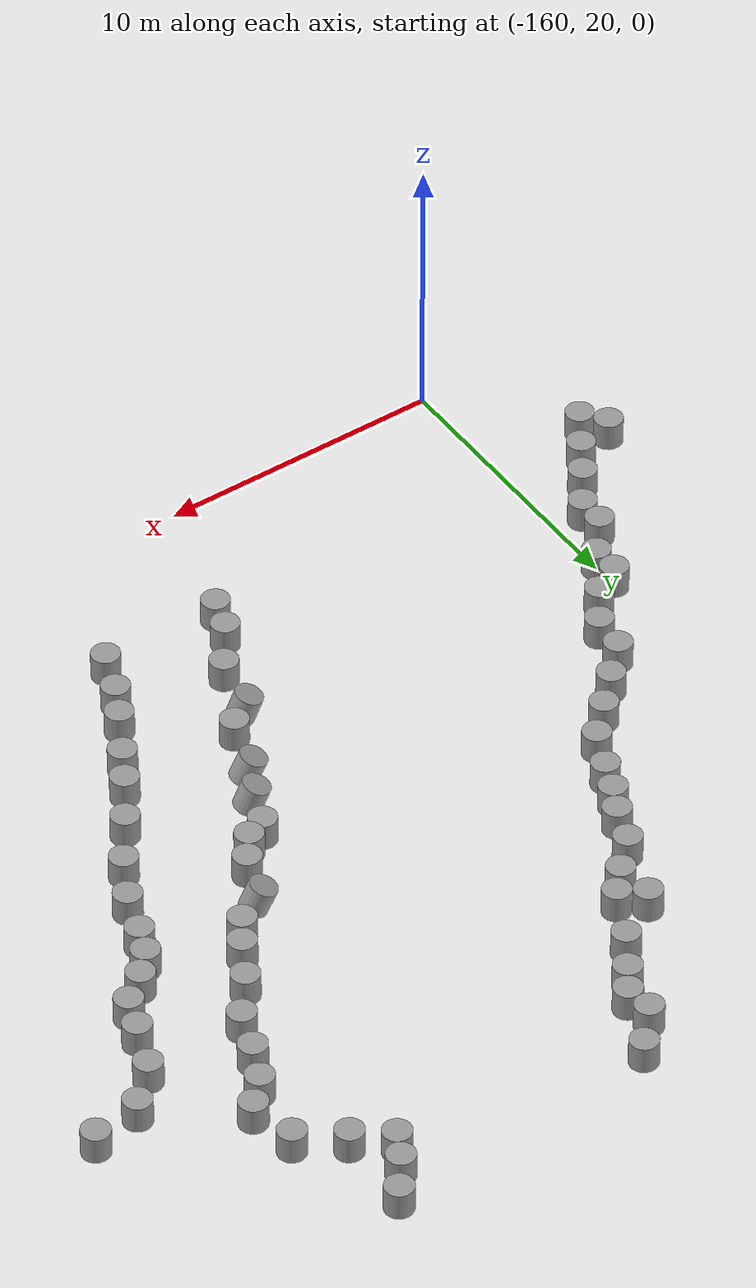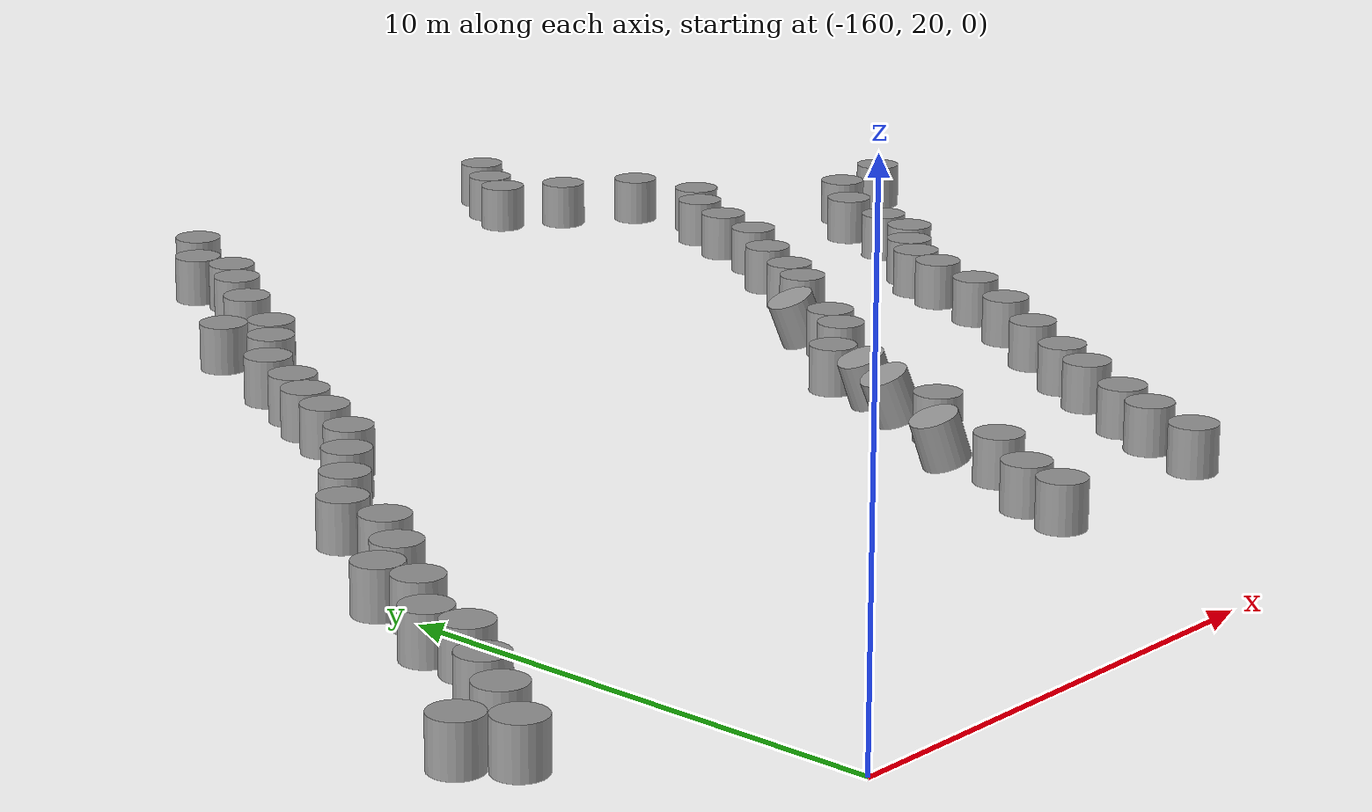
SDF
<sdf version="1.7">
 <world name="default">
  <model name="unit_cylinder_85_clone_244_clone_1">
   <pose>-132.027 42.5679 0.449997 1e-06 2e-06 0.000238</pose>
   <link name="link">
    <inertial>
     <mass>1</mass>
     <inertia><ixx>0.145833</ixx><ixy>0</ixy><ixz>0</ixz><iyy>0.145833</iyy><iyz>0</iyz><izz>0.125</izz></inertia>
    </inertial>
    <collision name="collision">
     <geometry><cylinder><radius>0.5</radius><length>1</length></cylinder></geometry>
    </collision>
    <visual name="visual">
     <geometry><cylinder><radius>0.5</radius><length>1</length></cylinder></geometry>
     <material>
      <script><name>Gazebo/Grey</name><uri>file://media/materials/scripts/gazebo.material</uri></script>
     </material>
    </visual>
   </link>
  </model>
  <model name="unit_cylinder_85_clone_244_clone_15">
   <pose>-138.379 49.8121 0.449995 -2e-06 -2e-06 0.000221</pose>
   <link name="link">
    <inertial>
     <mass>1</mass>
     <inertia><ixx>0.145833</ixx><ixy>0</ixy><ixz>0</ixz><iyy>0.145833</iyy><iyz>0</iyz><izz>0.125</izz></inertia>
    </inertial>
    <collision name="collision">
     <geometry><cylinder><radius>0.5</radius><length>1</length></cylinder></geometry>
    </collision>
    <visual name="visual">
     <geometry><cylinder><radius>0.5</radius><length>1</length></cylinder></geometry>
     <material>
      <script><name>Gazebo/Grey</name><uri>file://media/materials/scripts/gazebo.material</uri></script>
     </material>
    </visual>
   </link>
  </model>
  <model name="unit_cylinder_85_clone_244_clone_16">
   <pose>-139.179 48.7502 0.45 0 -0 0.000527</pose>
   <link name="link">
    <inertial>
     <mass>1</mass>
     <inertia><ixx>0.145833</ixx><ixy>0</ixy><ixz>0</ixz><iyy>0.145833</iyy><iyz>0</iyz><izz>0.125</izz></inertia>
    </inertial>
    <collision name="collision">
     <geometry><cylinder><radius>0.5</radius><length>1</length></cylinder></geometry>
    </collision>
    <visual name="visual">
     <geometry><cylinder><radius>0.5</radius><length>1</length></cylinder></geometry>
     <material>
      <script><name>Gazebo/Grey</name><uri>file://media/materials/scripts/gazebo.material</uri></script>
     </material>
    </visual>
   </link>
  </model>
  <model name="unit_cylinder_85_clone_244_clone_17">
   <pose>-139.647 47.8663 0.44999 0 -0 0.000439</pose>
   <link name="link">
    <inertial>
     <mass>1</mass>
     <inertia><ixx>0.145833</ixx><ixy>0</ixy><ixz>0</ixz><iyy>0.145833</iyy><iyz>0</iyz><izz>0.125</izz></inertia>
    </inertial>
    <collision name="collision">
     <geometry><cylinder><radius>0.5</radius><length>1</length></cylinder></geometry>
    </collision>
    <visual name="visual">
     <geometry><cylinder><radius>0.5</radius><length>1</length></cylinder></geometry>
     <material>
      <script><name>Gazebo/Grey</name><uri>file://media/materials/scripts/gazebo.material</uri></script>
     </material>
    </visual>
   </link>
  </model>
  <model name="unit_cylinder_85_clone_244_clone_18">
   <pose>-138.464 47.0001 0.449999 7e-06 -2e-06 0.000307</pose>
   <link name="link">
    <inertial>
     <mass>1</mass>
     <inertia><ixx>0.145833</ixx><ixy>0</ixy><ixz>0</ixz><iyy>0.145833</iyy><iyz>0</iyz><izz>0.125</izz></inertia>
    </inertial>
    <collision name="collision">
     <geometry><cylinder><radius>0.5</radius><length>1</length></cylinder></geometry>
    </collision>
    <visual name="visual">
     <geometry><cylinder><radius>0.5</radius><length>1</length></cylinder></geometry>
     <material>
      <script><name>Gazebo/Grey</name><uri>file://media/materials/scripts/gazebo.material</uri></script>
     </material>
    </visual>
   </link>
  </model>
  <model name="unit_cylinder_85_clone_244_clone_19">
   <pose>-137 46 0.449998 -4e-06 -1e-06 0.000349</pose>
   <link name="link">
    <inertial>
     <mass>1</mass>
     <inertia><ixx>0.145833</ixx><ixy>0</ixy><ixz>0</ixz><iyy>0.145833</iyy><iyz>0</iyz><izz>0.125</izz></inertia>
    </inertial>
    <collision name="collision">
     <geometry><cylinder><radius>0.5</radius><length>1</length></cylinder></geometry>
    </collision>
    <visual name="visual">
     <geometry><cylinder><radius>0.5</radius><length>1</length></cylinder></geometry>
     <material>
      <script><name>Gazebo/Grey</name><uri>file://media/materials/scripts/gazebo.material</uri></script>
     </material>
    </visual>
   </link>
  </model>
  <model name="unit_cylinder_85_clone_244_clone_20">
   <pose>-136.708 44.3129 0.449997 5e-06 1e-06 0.000349</pose>
   <link name="link">
    <inertial>
     <mass>1</mass>
     <inertia><ixx>0.145833</ixx><ixy>0</ixy><ixz>0</ixz><iyy>0.145833</iyy><iyz>0</iyz><izz>0.125</izz></inertia>
    </inertial>
    <collision name="collision">
     <geometry><cylinder><radius>0.5</radius><length>1</length></cylinder></geometry>
    </collision>
    <visual name="visual">
     <geometry><cylinder><radius>0.5</radius><length>1</length></cylinder></geometry>
     <material>
      <script><name>Gazebo/Grey</name><uri>file://media/materials/scripts/gazebo.material</uri></script>
     </material>
    </visual>
   </link>
  </model>
  <model name="unit_cylinder_85_clone_244_clone_21">
   <pose>-137.504 43.4883 0.449997 -4e-06 -0 0.000353</pose>
   <link name="link">
    <inertial>
     <mass>1</mass>
     <inertia><ixx>0.145833</ixx><ixy>0</ixy><ixz>0</ixz><iyy>0.145833</iyy><iyz>0</iyz><izz>0.125</izz></inertia>
    </inertial>
    <collision name="collision">
     <geometry><cylinder><radius>0.5</radius><length>1</length></cylinder></geometry>
    </collision>
    <visual name="visual">
     <geometry><cylinder><radius>0.5</radius><length>1</length></cylinder></geometry>
     <material>
      <script><name>Gazebo/Grey</name><uri>file://media/materials/scripts/gazebo.material</uri></script>
     </material>
    </visual>
   </link>
  </model>
  <model name="unit_cylinder_85_clone_244_clone_22">
   <pose>-138.077 42.2571 0.449999 4e-06 1e-06 0.000352</pose>
   <link name="link">
    <inertial>
     <mass>1</mass>
     <inertia><ixx>0.145833</ixx><ixy>0</ixy><ixz>0</ixz><iyy>0.145833</iyy><iyz>0</iyz><izz>0.125</izz></inertia>
    </inertial>
    <collision name="collision">
     <geometry><cylinder><radius>0.5</radius><length>1</length></cylinder></geometry>
    </collision>
    <visual name="visual">
     <geometry><cylinder><radius>0.5</radius><length>1</length></cylinder></geometry>
     <material>
      <script><name>Gazebo/Grey</name><uri>file://media/materials/scripts/gazebo.material</uri></script>
     </material>
    </visual>
   </link>
  </model>
  <model name="unit_cylinder_85_clone_244_clone_23">
   <pose>-138.586 40.8934 0.449998 -3e-06 -4e-06 0.000357</pose>
   <link name="link">
    <inertial>
     <mass>1</mass>
     <inertia><ixx>0.145833</ixx><ixy>0</ixy><ixz>0</ixz><iyy>0.145833</iyy><iyz>0</iyz><izz>0.125</izz></inertia>
    </inertial>
    <collision name="collision">
     <geometry><cylinder><radius>0.5</radius><length>1</length></cylinder></geometry>
    </collision>
    <visual name="visual">
     <geometry><cylinder><radius>0.5</radius><length>1</length></cylinder></geometry>
     <material>
      <script><name>Gazebo/Grey</name><uri>file://media/materials/scripts/gazebo.material</uri></script>
     </material>
    </visual>
   </link>
  </model>
  <model name="unit_cylinder_85_clone_244_clone_24">
   <pose>-139.599 39.5977 0.449997 3e-06 -3e-06 0.00036</pose>
   <link name="link">
    <inertial>
     <mass>1</mass>
     <inertia><ixx>0.145833</ixx><ixy>0</ixy><ixz>0</ixz><iyy>0.145833</iyy><iyz>0</iyz><izz>0.125</izz></inertia>
    </inertial>
    <collision name="collision">
     <geometry><cylinder><radius>0.5</radius><length>1</length></cylinder></geometry>
    </collision>
    <visual name="visual">
     <geometry><cylinder><radius>0.5</radius><length>1</length></cylinder></geometry>
     <material>
      <script><name>Gazebo/Grey</name><uri>file://media/materials/scripts/gazebo.material</uri></script>
     </material>
    </visual>
   </link>
  </model>
  <model name="unit_cylinder_85_clone_244_clone_25">
   <pose>-140.924 37.4535 0.449991 -0 -1e-06 0.000351</pose>
   <link name="link">
    <inertial>
     <mass>1</mass>
     <inertia><ixx>0.145833</ixx><ixy>0</ixy><ixz>0</ixz><iyy>0.145833</iyy><iyz>0</iyz><izz>0.125</izz></inertia>
    </inertial>
    <collision name="collision">
     <geometry><cylinder><radius>0.5</radius><length>1</length></cylinder></geometry>
    </collision>
    <visual name="visual">
     <geometry><cylinder><radius>0.5</radius><length>1</length></cylinder></geometry>
     <material>
      <script><name>Gazebo/Grey</name><uri>file://media/materials/scripts/gazebo.material</uri></script>
     </material>
    </visual>
   </link>
  </model>
  <model name="unit_cylinder_85_clone_244_clone_26">
   <pose>-140.349 38.3116 0.45 1e-06 -0 0.000457</pose>
   <link name="link">
    <inertial>
     <mass>1</mass>
     <inertia><ixx>0.145833</ixx><ixy>0</ixy><ixz>0</ixz><iyy>0.145833</iyy><iyz>0</iyz><izz>0.125</izz></inertia>
    </inertial>
    <collision name="collision">
     <geometry><cylinder><radius>0.5</radius><length>1</length></cylinder></geometry>
    </collision>
    <visual name="visual">
     <geometry><cylinder><radius>0.5</radius><length>1</length></cylinder></geometry>
     <material>
      <script><name>Gazebo/Grey</name><uri>file://media/materials/scripts/gazebo.material</uri></script>
     </material>
    </visual>
   </link>
  </model>
  <model name="unit_cylinder_85_clone_244_clone_27">
   <pose>-133.81 42.201 0.45 0 -0 0.000631</pose>
   <link name="link">
    <inertial>
     <mass>1</mass>
     <inertia><ixx>0.145833</ixx><ixy>0</ixy><ixz>0</ixz><iyy>0.145833</iyy><iyz>0</iyz><izz>0.125</izz></inertia>
    </inertial>
    <collision name="collision">
     <geometry><cylinder><radius>0.5</radius><length>1</length></cylinder></geometry>
    </collision>
    <visual name="visual">
     <geometry><cylinder><radius>0.5</radius><length>1</length></cylinder></geometry>
     <material>
      <script><name>Gazebo/Grey</name><uri>file://media/materials/scripts/gazebo.material</uri></script>
     </material>
    </visual>
   </link>
  </model>
  <model name="unit_cylinder_85_clone_244_clone_28">
   <pose>-134.991 41.0279 0.450001 1e-06 -0 0.000565</pose>
   <link name="link">
    <inertial>
     <mass>1</mass>
     <inertia><ixx>0.145833</ixx><ixy>0</ixy><ixz>0</ixz><iyy>0.145833</iyy><iyz>0</iyz><izz>0.125</izz></inertia>
    </inertial>
    <collision name="collision">
     <geometry><cylinder><radius>0.5</radius><length>1</length></cylinder></geometry>
    </collision>
    <visual name="visual">
     <geometry><cylinder><radius>0.5</radius><length>1</length></cylinder></geometry>
     <material>
      <script><name>Gazebo/Grey</name><uri>file://media/materials/scripts/gazebo.material</uri></script>
     </material>
    </visual>
   </link>
  </model>
  <model name="unit_cylinder_85_clone_244_clone_29">
   <pose>-135.608 39.4819 0.450004 -4e-06 -6e-06 0.000615</pose>
   <link name="link">
    <inertial>
     <mass>1</mass>
     <inertia><ixx>0.145833</ixx><ixy>0</ixy><ixz>0</ixz><iyy>0.145833</iyy><iyz>0</iyz><izz>0.125</izz></inertia>
    </inertial>
    <collision name="collision">
     <geometry><cylinder><radius>0.5</radius><length>1</length></cylinder></geometry>
    </collision>
    <visual name="visual">
     <geometry><cylinder><radius>0.5</radius><length>1</length></cylinder></geometry>
     <material>
      <script><name>Gazebo/Grey</name><uri>file://media/materials/scripts/gazebo.material</uri></script>
     </material>
    </visual>
   </link>
  </model>
  <model name="unit_cylinder_85_clone_244_clone_30">
   <pose>-136 38.4043 0.449997 4e-06 4e-06 0.001042</pose>
   <link name="link">
    <inertial>
     <mass>1</mass>
     <inertia><ixx>0.145833</ixx><ixy>0</ixy><ixz>0</ixz><iyy>0.145833</iyy><iyz>0</iyz><izz>0.125</izz></inertia>
    </inertial>
    <collision name="collision">
     <geometry><cylinder><radius>0.5</radius><length>1</length></cylinder></geometry>
    </collision>
    <visual name="visual">
     <geometry><cylinder><radius>0.5</radius><length>1</length></cylinder></geometry>
     <material>
      <script><name>Gazebo/Grey</name><uri>file://media/materials/scripts/gazebo.material</uri></script>
     </material>
    </visual>
   </link>
  </model>
  <model name="unit_cylinder_85_clone_244_clone_31">
   <pose>-137.615 36.9221 0.45 -4e-06 -0 0.000912</pose>
   <link name="link">
    <inertial>
     <mass>1</mass>
     <inertia><ixx>0.145833</ixx><ixy>0</ixy><ixz>0</ixz><iyy>0.145833</iyy><iyz>0</iyz><izz>0.125</izz></inertia>
    </inertial>
    <collision name="collision">
     <geometry><cylinder><radius>0.5</radius><length>1</length></cylinder></geometry>
    </collision>
    <visual name="visual">
     <geometry><cylinder><radius>0.5</radius><length>1</length></cylinder></geometry>
     <material>
      <script><name>Gazebo/Grey</name><uri>file://media/materials/scripts/gazebo.material</uri></script>
     </material>
    </visual>
   </link>
  </model>
  <model name="unit_cylinder_85_clone_244_clone_32">
   <pose>-136.937 37.6573 0.450001 2e-06 1e-06 0.001035</pose>
   <link name="link">
    <inertial>
     <mass>1</mass>
     <inertia><ixx>0.145833</ixx><ixy>0</ixy><ixz>0</ixz><iyy>0.145833</iyy><iyz>0</iyz><izz>0.125</izz></inertia>
    </inertial>
    <collision name="collision">
     <geometry><cylinder><radius>0.5</radius><length>1</length></cylinder></geometry>
    </collision>
    <visual name="visual">
     <geometry><cylinder><radius>0.5</radius><length>1</length></cylinder></geometry>
     <material>
      <script><name>Gazebo/Grey</name><uri>file://media/materials/scripts/gazebo.material</uri></script>
     </material>
    </visual>
   </link>
  </model>
  <model name="unit_cylinder_85_clone_244_clone_33">
   <pose>-138 35.9991 0.449992 -2e-06 3e-06 -0.000116</pose>
   <link name="link">
    <inertial>
     <mass>1</mass>
     <inertia><ixx>0.145833</ixx><ixy>0</ixy><ixz>0</ixz><iyy>0.145833</iyy><iyz>0</iyz><izz>0.125</izz></inertia>
    </inertial>
    <collision name="collision">
     <geometry><cylinder><radius>0.5</radius><length>1</length></cylinder></geometry>
    </collision>
    <visual name="visual">
     <geometry><cylinder><radius>0.5</radius><length>1</length></cylinder></geometry>
     <material>
      <script><name>Gazebo/Grey</name><uri>file://media/materials/scripts/gazebo.material</uri></script>
     </material>
    </visual>
   </link>
  </model>
  <model name="unit_cylinder_85_clone_244_clone_34">
   <pose>-142.145 36.5656 0.394004 -0.189425 -0.307665 0.022353</pose>
   <link name="link">
    <inertial>
     <mass>1</mass>
     <inertia><ixx>0.145833</ixx><ixy>0</ixy><ixz>0</ixz><iyy>0.145833</iyy><iyz>0</iyz><izz>0.125</izz></inertia>
    </inertial>
    <collision name="collision">
     <geometry><cylinder><radius>0.5</radius><length>1</length></cylinder></geometry>
    </collision>
    <visual name="visual">
     <geometry><cylinder><radius>0.5</radius><length>1</length></cylinder></geometry>
     <material>
      <script><name>Gazebo/Grey</name><uri>file://media/materials/scripts/gazebo.material</uri></script>
     </material>
    </visual>
   </link>
  </model>
  <model name="unit_cylinder_85_clone_244_clone_35">
   <pose>-142.588 35.2788 0.450005 -9e-06 2e-06 0.014087</pose>
   <link name="link">
    <inertial>
     <mass>1</mass>
     <inertia><ixx>0.145833</ixx><ixy>0</ixy><ixz>0</ixz><iyy>0.145833</iyy><iyz>0</iyz><izz>0.125</izz></inertia>
    </inertial>
    <collision name="collision">
     <geometry><cylinder><radius>0.5</radius><length>1</length></cylinder></geometry>
    </collision>
    <visual name="visual">
     <geometry><cylinder><radius>0.5</radius><length>1</length></cylinder></geometry>
     <material>
      <script><name>Gazebo/Grey</name><uri>file://media/materials/scripts/gazebo.material</uri></script>
     </material>
    </visual>
   </link>
  </model>
  <model name="unit_cylinder_85_clone_244_clone_36">
   <pose>-143.199 34.4869 0.450047 -2.7e-05 -0.000169 -0.098283</pose>
   <link name="link">
    <inertial>
     <mass>1</mass>
     <inertia><ixx>0.145833</ixx><ixy>0</ixy><ixz>0</ixz><iyy>0.145833</iyy><iyz>0</iyz><izz>0.125</izz></inertia>
    </inertial>
    <collision name="collision">
     <geometry><cylinder><radius>0.5</radius><length>1</length></cylinder></geometry>
    </collision>
    <visual name="visual">
     <geometry><cylinder><radius>0.5</radius><length>1</length></cylinder></geometry>
     <material>
      <script><name>Gazebo/Grey</name><uri>file://media/materials/scripts/gazebo.material</uri></script>
     </material>
    </visual>
   </link>
  </model>
  <model name="unit_cylinder_85_clone_244_clone_37">
   <pose>-144.058 33.9749 0.25005 6.8e-05 -9e-05 -0.014778</pose>
   <link name="link">
    <inertial>
     <mass>1</mass>
     <inertia><ixx>0.145833</ixx><ixy>0</ixy><ixz>0</ixz><iyy>0.145833</iyy><iyz>0</iyz><izz>0.125</izz></inertia>
    </inertial>
    <collision name="collision">
     <geometry><cylinder><radius>0.5</radius><length>1</length></cylinder></geometry>
    </collision>
    <visual name="visual">
     <geometry><cylinder><radius>0.5</radius><length>1</length></cylinder></geometry>
     <material>
      <script><name>Gazebo/Grey</name><uri>file://media/materials/scripts/gazebo.material</uri></script>
     </material>
    </visual>
   </link>
  </model>
  <model name="unit_cylinder_85_clone_244_clone_38">
   <pose>-144.544 32.6563 0.383883 -0.175836 -0.276326 0.035204</pose>
   <link name="link">
    <inertial>
     <mass>1</mass>
     <inertia><ixx>0.145833</ixx><ixy>0</ixy><ixz>0</ixz><iyy>0.145833</iyy><iyz>0</iyz><izz>0.125</izz></inertia>
    </inertial>
    <collision name="collision">
     <geometry><cylinder><radius>0.5</radius><length>1</length></cylinder></geometry>
    </collision>
    <visual name="visual">
     <geometry><cylinder><radius>0.5</radius><length>1</length></cylinder></geometry>
     <material>
      <script><name>Gazebo/Grey</name><uri>file://media/materials/scripts/gazebo.material</uri></script>
     </material>
    </visual>
   </link>
  </model>
  <model name="unit_cylinder_85_clone_244_clone_39">
   <pose>-145.173 31.5243 0.396245 -0.193736 -0.314254 0.023507</pose>
   <link name="link">
    <inertial>
     <mass>1</mass>
     <inertia><ixx>0.145833</ixx><ixy>0</ixy><ixz>0</ixz><iyy>0.145833</iyy><iyz>0</iyz><izz>0.125</izz></inertia>
    </inertial>
    <collision name="collision">
     <geometry><cylinder><radius>0.5</radius><length>1</length></cylinder></geometry>
    </collision>
    <visual name="visual">
     <geometry><cylinder><radius>0.5</radius><length>1</length></cylinder></geometry>
     <material>
      <script><name>Gazebo/Grey</name><uri>file://media/materials/scripts/gazebo.material</uri></script>
     </material>
    </visual>
   </link>
  </model>
  <model name="unit_cylinder_85_clone_244_clone_40">
   <pose>-145.726 29.8997 0.449998 -4e-06 -0 0.000353</pose>
   <link name="link">
    <inertial>
     <mass>1</mass>
     <inertia><ixx>0.145833</ixx><ixy>0</ixy><ixz>0</ixz><iyy>0.145833</iyy><iyz>0</iyz><izz>0.125</izz></inertia>
    </inertial>
    <collision name="collision">
     <geometry><cylinder><radius>0.5</radius><length>1</length></cylinder></geometry>
    </collision>
    <visual name="visual">
     <geometry><cylinder><radius>0.5</radius><length>1</length></cylinder></geometry>
     <material>
      <script><name>Gazebo/Grey</name><uri>file://media/materials/scripts/gazebo.material</uri></script>
     </material>
    </visual>
   </link>
  </model>
  <model name="unit_cylinder_85_clone_244_clone_41">
   <pose>-146.677 29.0813 0.380121 -0.161587 -0.270913 0.020364</pose>
   <link name="link">
    <inertial>
     <mass>1</mass>
     <inertia><ixx>0.145833</ixx><ixy>0</ixy><ixz>0</ixz><iyy>0.145833</iyy><iyz>0</iyz><izz>0.125</izz></inertia>
    </inertial>
    <collision name="collision">
     <geometry><cylinder><radius>0.5</radius><length>1</length></cylinder></geometry>
    </collision>
    <visual name="visual">
     <geometry><cylinder><radius>0.5</radius><length>1</length></cylinder></geometry>
     <material>
      <script><name>Gazebo/Grey</name><uri>file://media/materials/scripts/gazebo.material</uri></script>
     </material>
    </visual>
   </link>
  </model>
  <model name="unit_cylinder_85_clone_244_clone_42">
   <pose>-147 27.4138 0.449997 2e-06 -6e-06 0.000364</pose>
   <link name="link">
    <inertial>
     <mass>1</mass>
     <inertia><ixx>0.145833</ixx><ixy>0</ixy><ixz>0</ixz><iyy>0.145833</iyy><iyz>0</iyz><izz>0.125</izz></inertia>
    </inertial>
    <collision name="collision">
     <geometry><cylinder><radius>0.5</radius><length>1</length></cylinder></geometry>
    </collision>
    <visual name="visual">
     <geometry><cylinder><radius>0.5</radius><length>1</length></cylinder></geometry>
     <material>
      <script><name>Gazebo/Grey</name><uri>file://media/materials/scripts/gazebo.material</uri></script>
     </material>
    </visual>
   </link>
  </model>
  <model name="unit_cylinder_85_clone_244_clone_43">
   <pose>-148 26 0.450005 -6e-06 -7e-06 0.000349</pose>
   <link name="link">
    <inertial>
     <mass>1</mass>
     <inertia><ixx>0.145833</ixx><ixy>0</ixy><ixz>0</ixz><iyy>0.145833</iyy><iyz>0</iyz><izz>0.125</izz></inertia>
    </inertial>
    <collision name="collision">
     <geometry><cylinder><radius>0.5</radius><length>1</length></cylinder></geometry>
    </collision>
    <visual name="visual">
     <geometry><cylinder><radius>0.5</radius><length>1</length></cylinder></geometry>
     <material>
      <script><name>Gazebo/Grey</name><uri>file://media/materials/scripts/gazebo.material</uri></script>
     </material>
    </visual>
   </link>
  </model>
  <model name="unit_cylinder_85_clone_244_clone_44">
   <pose>-148.352 24.9116 0.449998 -4e-06 -4e-06 0.000356</pose>
   <link name="link">
    <inertial>
     <mass>1</mass>
     <inertia><ixx>0.145833</ixx><ixy>0</ixy><ixz>0</ixz><iyy>0.145833</iyy><iyz>0</iyz><izz>0.125</izz></inertia>
    </inertial>
    <collision name="collision">
     <geometry><cylinder><radius>0.5</radius><length>1</length></cylinder></geometry>
    </collision>
    <visual name="visual">
     <geometry><cylinder><radius>0.5</radius><length>1</length></cylinder></geometry>
     <material>
      <script><name>Gazebo/Grey</name><uri>file://media/materials/scripts/gazebo.material</uri></script>
     </material>
    </visual>
   </link>
  </model>
  <model name="unit_cylinder_85_clone_244_clone_53">
   <pose>-138.536 34.528 0.45 0 -0 0.00056</pose>
   <link name="link">
    <inertial>
     <mass>1</mass>
     <inertia><ixx>0.145833</ixx><ixy>0</ixy><ixz>0</ixz><iyy>0.145833</iyy><iyz>0</iyz><izz>0.125</izz></inertia>
    </inertial>
    <collision name="collision">
     <geometry><cylinder><radius>0.5</radius><length>1</length></cylinder></geometry>
    </collision>
    <visual name="visual">
     <geometry><cylinder><radius>0.5</radius><length>1</length></cylinder></geometry>
     <material>
      <script><name>Gazebo/Grey</name><uri>file://media/materials/scripts/gazebo.material</uri></script>
     </material>
    </visual>
   </link>
  </model>
  <model name="unit_cylinder_85_clone_244_clone_54">
   <pose>-139.334 33.0959 0.44999 0 -0 0.000371</pose>
   <link name="link">
    <inertial>
     <mass>1</mass>
     <inertia><ixx>0.145833</ixx><ixy>0</ixy><ixz>0</ixz><iyy>0.145833</iyy><iyz>0</iyz><izz>0.125</izz></inertia>
    </inertial>
    <collision name="collision">
     <geometry><cylinder><radius>0.5</radius><length>1</length></cylinder></geometry>
    </collision>
    <visual name="visual">
     <geometry><cylinder><radius>0.5</radius><length>1</length></cylinder></geometry>
     <material>
      <script><name>Gazebo/Grey</name><uri>file://media/materials/scripts/gazebo.material</uri></script>
     </material>
    </visual>
   </link>
  </model>
  <model name="unit_cylinder_85_clone_244_clone_55">
   <pose>-140.405 31.5638 0.450002 -2e-06 -3e-06 0.000473</pose>
   <link name="link">
    <inertial>
     <mass>1</mass>
     <inertia><ixx>0.145833</ixx><ixy>0</ixy><ixz>0</ixz><iyy>0.145833</iyy><iyz>0</iyz><izz>0.125</izz></inertia>
    </inertial>
    <collision name="collision">
     <geometry><cylinder><radius>0.5</radius><length>1</length></cylinder></geometry>
    </collision>
    <visual name="visual">
     <geometry><cylinder><radius>0.5</radius><length>1</length></cylinder></geometry>
     <material>
      <script><name>Gazebo/Grey</name><uri>file://media/materials/scripts/gazebo.material</uri></script>
     </material>
    </visual>
   </link>
  </model>
  <model name="unit_cylinder_85_clone_244_clone_56">
   <pose>-141.367 30.0864 0.450002 -4e-06 2e-06 0.000257</pose>
   <link name="link">
    <inertial>
     <mass>1</mass>
     <inertia><ixx>0.145833</ixx><ixy>0</ixy><ixz>0</ixz><iyy>0.145833</iyy><iyz>0</iyz><izz>0.125</izz></inertia>
    </inertial>
    <collision name="collision">
     <geometry><cylinder><radius>0.5</radius><length>1</length></cylinder></geometry>
    </collision>
    <visual name="visual">
     <geometry><cylinder><radius>0.5</radius><length>1</length></cylinder></geometry>
     <material>
      <script><name>Gazebo/Grey</name><uri>file://media/materials/scripts/gazebo.material</uri></script>
     </material>
    </visual>
   </link>
  </model>
  <model name="unit_cylinder_85_clone_244_clone_57">
   <pose>-142 29 0.449999 -1e-06 -6e-06 0.000346</pose>
   <link name="link">
    <inertial>
     <mass>1</mass>
     <inertia><ixx>0.145833</ixx><ixy>0</ixy><ixz>0</ixz><iyy>0.145833</iyy><iyz>0</iyz><izz>0.125</izz></inertia>
    </inertial>
    <collision name="collision">
     <geometry><cylinder><radius>0.5</radius><length>1</length></cylinder></geometry>
    </collision>
    <visual name="visual">
     <geometry><cylinder><radius>0.5</radius><length>1</length></cylinder></geometry>
     <material>
      <script><name>Gazebo/Grey</name><uri>file://media/materials/scripts/gazebo.material</uri></script>
     </material>
    </visual>
   </link>
  </model>
  <model name="unit_cylinder_85_clone_244_clone_58">
   <pose>-142.88 27.4863 0.45 0 -0 0.000436</pose>
   <link name="link">
    <inertial>
     <mass>1</mass>
     <inertia><ixx>0.145833</ixx><ixy>0</ixy><ixz>0</ixz><iyy>0.145833</iyy><iyz>0</iyz><izz>0.125</izz></inertia>
    </inertial>
    <collision name="collision">
     <geometry><cylinder><radius>0.5</radius><length>1</length></cylinder></geometry>
    </collision>
    <visual name="visual">
     <geometry><cylinder><radius>0.5</radius><length>1</length></cylinder></geometry>
     <material>
      <script><name>Gazebo/Grey</name><uri>file://media/materials/scripts/gazebo.material</uri></script>
     </material>
    </visual>
   </link>
  </model>
  <model name="unit_cylinder_85_clone_244_clone_59">
   <pose>-143.442 26.4251 0.449991 1e-06 1e-06 0.000568</pose>
   <link name="link">
    <inertial>
     <mass>1</mass>
     <inertia><ixx>0.145833</ixx><ixy>0</ixy><ixz>0</ixz><iyy>0.145833</iyy><iyz>0</iyz><izz>0.125</izz></inertia>
    </inertial>
    <collision name="collision">
     <geometry><cylinder><radius>0.5</radius><length>1</length></cylinder></geometry>
    </collision>
    <visual name="visual">
     <geometry><cylinder><radius>0.5</radius><length>1</length></cylinder></geometry>
     <material>
      <script><name>Gazebo/Grey</name><uri>file://media/materials/scripts/gazebo.material</uri></script>
     </material>
    </visual>
   </link>
  </model>
  <model name="unit_cylinder_85_clone_244_clone_60">
   <pose>-144 24.9999 0.45 0 -0 5.4e-05</pose>
   <link name="link">
    <inertial>
     <mass>1</mass>
     <inertia><ixx>0.145833</ixx><ixy>0</ixy><ixz>0</ixz><iyy>0.145833</iyy><iyz>0</iyz><izz>0.125</izz></inertia>
    </inertial>
    <collision name="collision">
     <geometry><cylinder><radius>0.5</radius><length>1</length></cylinder></geometry>
    </collision>
    <visual name="visual">
     <geometry><cylinder><radius>0.5</radius><length>1</length></cylinder></geometry>
     <material>
      <script><name>Gazebo/Grey</name><uri>file://media/materials/scripts/gazebo.material</uri></script>
     </material>
    </visual>
   </link>
  </model>
  <model name="unit_cylinder_85_clone_244_clone_126">
   <pose>-164.038 25.0479 0.459817 0.002962 0.004785 -0.005694</pose>
   <link name="link">
    <inertial>
     <mass>1</mass>
     <inertia><ixx>0.145833</ixx><ixy>0</ixy><ixz>0</ixz><iyy>0.145833</iyy><iyz>0</iyz><izz>0.125</izz></inertia>
    </inertial>
    <collision name="collision">
     <geometry><cylinder><radius>0.5</radius><length>1</length></cylinder></geometry>
    </collision>
    <visual name="visual">
     <geometry><cylinder><radius>0.5</radius><length>1</length></cylinder></geometry>
     <material>
      <script><name>Gazebo/Grey</name><uri>file://media/materials/scripts/gazebo.material</uri></script>
     </material>
    </visual>
   </link>
  </model>
  <model name="unit_cylinder_85_clone_244_clone_127">
   <pose>-163.424 24.2475 0.45449 0.002953 0.004777 -0.006447</pose>
   <link name="link">
    <inertial>
     <mass>1</mass>
     <inertia><ixx>0.145833</ixx><ixy>0</ixy><ixz>0</ixz><iyy>0.145833</iyy><iyz>0</iyz><izz>0.125</izz></inertia>
    </inertial>
    <collision name="collision">
     <geometry><cylinder><radius>0.5</radius><length>1</length></cylinder></geometry>
    </collision>
    <visual name="visual">
     <geometry><cylinder><radius>0.5</radius><length>1</length></cylinder></geometry>
     <material>
      <script><name>Gazebo/Grey</name><uri>file://media/materials/scripts/gazebo.material</uri></script>
     </material>
    </visual>
   </link>
  </model>
  <model name="unit_cylinder_85_clone_244_clone_128">
   <pose>-162.627 25.4486 0.454293 0.002987 0.004759 0.000427</pose>
   <link name="link">
    <inertial>
     <mass>1</mass>
     <inertia><ixx>0.145833</ixx><ixy>0</ixy><ixz>0</ixz><iyy>0.145833</iyy><iyz>0</iyz><izz>0.125</izz></inertia>
    </inertial>
    <collision name="collision">
     <geometry><cylinder><radius>0.5</radius><length>1</length></cylinder></geometry>
    </collision>
    <visual name="visual">
     <geometry><cylinder><radius>0.5</radius><length>1</length></cylinder></geometry>
     <material>
      <script><name>Gazebo/Grey</name><uri>file://media/materials/scripts/gazebo.material</uri></script>
     </material>
    </visual>
   </link>
  </model>
  <model name="unit_cylinder_85_clone_244_clone_129">
   <pose>-161.887 26.5736 0.454129 0.002984 0.004754 0.000197</pose>
   <link name="link">
    <inertial>
     <mass>1</mass>
     <inertia><ixx>0.145833</ixx><ixy>0</ixy><ixz>0</ixz><iyy>0.145833</iyy><iyz>0</iyz><izz>0.125</izz></inertia>
    </inertial>
    <collision name="collision">
     <geometry><cylinder><radius>0.5</radius><length>1</length></cylinder></geometry>
    </collision>
    <visual name="visual">
     <geometry><cylinder><radius>0.5</radius><length>1</length></cylinder></geometry>
     <material>
      <script><name>Gazebo/Grey</name><uri>file://media/materials/scripts/gazebo.material</uri></script>
     </material>
    </visual>
   </link>
  </model>
  <model name="unit_cylinder_85_clone_244_clone_130">
   <pose>-161.004 27.8073 0.45385 0.002976 0.004237 0.004507</pose>
   <link name="link">
    <inertial>
     <mass>1</mass>
     <inertia><ixx>0.145833</ixx><ixy>0</ixy><ixz>0</ixz><iyy>0.145833</iyy><iyz>0</iyz><izz>0.125</izz></inertia>
    </inertial>
    <collision name="collision">
     <geometry><cylinder><radius>0.5</radius><length>1</length></cylinder></geometry>
    </collision>
    <visual name="visual">
     <geometry><cylinder><radius>0.5</radius><length>1</length></cylinder></geometry>
     <material>
      <script><name>Gazebo/Grey</name><uri>file://media/materials/scripts/gazebo.material</uri></script>
     </material>
    </visual>
   </link>
  </model>
  <model name="unit_cylinder_85_clone_244_clone_131">
   <pose>-160.978 28.807 0.456468 0.002968 0.004761 -0.001032</pose>
   <link name="link">
    <inertial>
     <mass>1</mass>
     <inertia><ixx>0.145833</ixx><ixy>0</ixy><ixz>0</ixz><iyy>0.145833</iyy><iyz>0</iyz><izz>0.125</izz></inertia>
    </inertial>
    <collision name="collision">
     <geometry><cylinder><radius>0.5</radius><length>1</length></cylinder></geometry>
    </collision>
    <visual name="visual">
     <geometry><cylinder><radius>0.5</radius><length>1</length></cylinder></geometry>
     <material>
      <script><name>Gazebo/Grey</name><uri>file://media/materials/scripts/gazebo.material</uri></script>
     </material>
    </visual>
   </link>
  </model>
  <model name="unit_cylinder_85_clone_244_clone_132">
   <pose>-159.996 29.998 0.455349 0.002984 0.00475 0.000508</pose>
   <link name="link">
    <inertial>
     <mass>1</mass>
     <inertia><ixx>0.145833</ixx><ixy>0</ixy><ixz>0</ixz><iyy>0.145833</iyy><iyz>0</iyz><izz>0.125</izz></inertia>
    </inertial>
    <collision name="collision">
     <geometry><cylinder><radius>0.5</radius><length>1</length></cylinder></geometry>
    </collision>
    <visual name="visual">
     <geometry><cylinder><radius>0.5</radius><length>1</length></cylinder></geometry>
     <material>
      <script><name>Gazebo/Grey</name><uri>file://media/materials/scripts/gazebo.material</uri></script>
     </material>
    </visual>
   </link>
  </model>
  <model name="unit_cylinder_85_clone_244_clone_133">
   <pose>-159.996 30.9982 0.458335 0.002982 0.00476 -0.000484</pose>
   <link name="link">
    <inertial>
     <mass>1</mass>
     <inertia><ixx>0.145833</ixx><ixy>0</ixy><ixz>0</ixz><iyy>0.145833</iyy><iyz>0</iyz><izz>0.125</izz></inertia>
    </inertial>
    <collision name="collision">
     <geometry><cylinder><radius>0.5</radius><length>1</length></cylinder></geometry>
    </collision>
    <visual name="visual">
     <geometry><cylinder><radius>0.5</radius><length>1</length></cylinder></geometry>
     <material>
      <script><name>Gazebo/Grey</name><uri>file://media/materials/scripts/gazebo.material</uri></script>
     </material>
    </visual>
   </link>
  </model>
  <model name="unit_cylinder_85_clone_244_clone_134">
   <pose>-158.996 31.5521 0.455236 0.002974 0.004755 0.00037</pose>
   <link name="link">
    <inertial>
     <mass>1</mass>
     <inertia><ixx>0.145833</ixx><ixy>0</ixy><ixz>0</ixz><iyy>0.145833</iyy><iyz>0</iyz><izz>0.125</izz></inertia>
    </inertial>
    <collision name="collision">
     <geometry><cylinder><radius>0.5</radius><length>1</length></cylinder></geometry>
    </collision>
    <visual name="visual">
     <geometry><cylinder><radius>0.5</radius><length>1</length></cylinder></geometry>
     <material>
      <script><name>Gazebo/Grey</name><uri>file://media/materials/scripts/gazebo.material</uri></script>
     </material>
    </visual>
   </link>
  </model>
  <model name="unit_cylinder_85_clone_244_clone_135">
   <pose>-158.167 32.7124 0.454753 0.002984 0.004755 0.00044</pose>
   <link name="link">
    <inertial>
     <mass>1</mass>
     <inertia><ixx>0.145833</ixx><ixy>0</ixy><ixz>0</ixz><iyy>0.145833</iyy><iyz>0</iyz><izz>0.125</izz></inertia>
    </inertial>
    <collision name="collision">
     <geometry><cylinder><radius>0.5</radius><length>1</length></cylinder></geometry>
    </collision>
    <visual name="visual">
     <geometry><cylinder><radius>0.5</radius><length>1</length></cylinder></geometry>
     <material>
      <script><name>Gazebo/Grey</name><uri>file://media/materials/scripts/gazebo.material</uri></script>
     </material>
    </visual>
   </link>
  </model>
  <model name="unit_cylinder_85_clone_244_clone_136">
   <pose>-157.996 33.9981 0.457773 0.002986 0.004754 0.000382</pose>
   <link name="link">
    <inertial>
     <mass>1</mass>
     <inertia><ixx>0.145833</ixx><ixy>0</ixy><ixz>0</ixz><iyy>0.145833</iyy><iyz>0</iyz><izz>0.125</izz></inertia>
    </inertial>
    <collision name="collision">
     <geometry><cylinder><radius>0.5</radius><length>1</length></cylinder></geometry>
    </collision>
    <visual name="visual">
     <geometry><cylinder><radius>0.5</radius><length>1</length></cylinder></geometry>
     <material>
      <script><name>Gazebo/Grey</name><uri>file://media/materials/scripts/gazebo.material</uri></script>
     </material>
    </visual>
   </link>
  </model>
  <model name="unit_cylinder_85_clone_244_clone_137">
   <pose>-156.996 34.9981 0.456002 0.002981 0.004748 0.000464</pose>
   <link name="link">
    <inertial>
     <mass>1</mass>
     <inertia><ixx>0.145833</ixx><ixy>0</ixy><ixz>0</ixz><iyy>0.145833</iyy><iyz>0</iyz><izz>0.125</izz></inertia>
    </inertial>
    <collision name="collision">
     <geometry><cylinder><radius>0.5</radius><length>1</length></cylinder></geometry>
    </collision>
    <visual name="visual">
     <geometry><cylinder><radius>0.5</radius><length>1</length></cylinder></geometry>
     <material>
      <script><name>Gazebo/Grey</name><uri>file://media/materials/scripts/gazebo.material</uri></script>
     </material>
    </visual>
   </link>
  </model>
  <model name="unit_cylinder_85_clone_244_clone_138">
   <pose>-155.996 35.9981 0.45422 0.002984 0.00475 0.00054</pose>
   <link name="link">
    <inertial>
     <mass>1</mass>
     <inertia><ixx>0.145833</ixx><ixy>0</ixy><ixz>0</ixz><iyy>0.145833</iyy><iyz>0</iyz><izz>0.125</izz></inertia>
    </inertial>
    <collision name="collision">
     <geometry><cylinder><radius>0.5</radius><length>1</length></cylinder></geometry>
    </collision>
    <visual name="visual">
     <geometry><cylinder><radius>0.5</radius><length>1</length></cylinder></geometry>
     <material>
      <script><name>Gazebo/Grey</name><uri>file://media/materials/scripts/gazebo.material</uri></script>
     </material>
    </visual>
   </link>
  </model>
  <model name="unit_cylinder_85_clone_244_clone_139">
   <pose>-154.997 36.9989 0.452792 0.00267 0.00417 0.002863</pose>
   <link name="link">
    <inertial>
     <mass>1</mass>
     <inertia><ixx>0.145833</ixx><ixy>0</ixy><ixz>0</ixz><iyy>0.145833</iyy><iyz>0</iyz><izz>0.125</izz></inertia>
    </inertial>
    <collision name="collision">
     <geometry><cylinder><radius>0.5</radius><length>1</length></cylinder></geometry>
    </collision>
    <visual name="visual">
     <geometry><cylinder><radius>0.5</radius><length>1</length></cylinder></geometry>
     <material>
      <script><name>Gazebo/Grey</name><uri>file://media/materials/scripts/gazebo.material</uri></script>
     </material>
    </visual>
   </link>
  </model>
  <model name="unit_cylinder_85_clone_244_clone_140">
   <pose>-154.388 38.3217 0.459216 0.012691 -0.00132 -0.003116</pose>
   <link name="link">
    <inertial>
     <mass>1</mass>
     <inertia><ixx>0.145833</ixx><ixy>0</ixy><ixz>0</ixz><iyy>0.145833</iyy><iyz>0</iyz><izz>0.125</izz></inertia>
    </inertial>
    <collision name="collision">
     <geometry><cylinder><radius>0.5</radius><length>1</length></cylinder></geometry>
    </collision>
    <visual name="visual">
     <geometry><cylinder><radius>0.5</radius><length>1</length></cylinder></geometry>
     <material>
      <script><name>Gazebo/Grey</name><uri>file://media/materials/scripts/gazebo.material</uri></script>
     </material>
    </visual>
   </link>
  </model>
  <model name="unit_cylinder_85_clone_244_clone_141">
   <pose>-153.964 39.3345 0.473621 0.013906 -0.00225 -0.002103</pose>
   <link name="link">
    <inertial>
     <mass>1</mass>
     <inertia><ixx>0.145833</ixx><ixy>0</ixy><ixz>0</ixz><iyy>0.145833</iyy><iyz>0</iyz><izz>0.125</izz></inertia>
    </inertial>
    <collision name="collision">
     <geometry><cylinder><radius>0.5</radius><length>1</length></cylinder></geometry>
    </collision>
    <visual name="visual">
     <geometry><cylinder><radius>0.5</radius><length>1</length></cylinder></geometry>
     <material>
      <script><name>Gazebo/Grey</name><uri>file://media/materials/scripts/gazebo.material</uri></script>
     </material>
    </visual>
   </link>
  </model>
  <model name="unit_cylinder_85_clone_244_clone_142">
   <pose>-153.488 40.2162 0.487005 0.01386 -0.002352 -0.001934</pose>
   <link name="link">
    <inertial>
     <mass>1</mass>
     <inertia><ixx>0.145833</ixx><ixy>0</ixy><ixz>0</ixz><iyy>0.145833</iyy><iyz>0</iyz><izz>0.125</izz></inertia>
    </inertial>
    <collision name="collision">
     <geometry><cylinder><radius>0.5</radius><length>1</length></cylinder></geometry>
    </collision>
    <visual name="visual">
     <geometry><cylinder><radius>0.5</radius><length>1</length></cylinder></geometry>
     <material>
      <script><name>Gazebo/Grey</name><uri>file://media/materials/scripts/gazebo.material</uri></script>
     </material>
    </visual>
   </link>
  </model>
  <model name="unit_cylinder_85_clone_244_clone_143">
   <pose>-153.002 41.4718 0.505547 0.013879 -0.00233 0.00023</pose>
   <link name="link">
    <inertial>
     <mass>1</mass>
     <inertia><ixx>0.145833</ixx><ixy>0</ixy><ixz>0</ixz><iyy>0.145833</iyy><iyz>0</iyz><izz>0.125</izz></inertia>
    </inertial>
    <collision name="collision">
     <geometry><cylinder><radius>0.5</radius><length>1</length></cylinder></geometry>
    </collision>
    <visual name="visual">
     <geometry><cylinder><radius>0.5</radius><length>1</length></cylinder></geometry>
     <material>
      <script><name>Gazebo/Grey</name><uri>file://media/materials/scripts/gazebo.material</uri></script>
     </material>
    </visual>
   </link>
  </model>
  <model name="unit_cylinder_85_clone_244_clone_144">
   <pose>-152.002 42.4827 0.522096 0.013633 -0.002897 -0.002887</pose>
   <link name="link">
    <inertial>
     <mass>1</mass>
     <inertia><ixx>0.145833</ixx><ixy>0</ixy><ixz>0</ixz><iyy>0.145833</iyy><iyz>0</iyz><izz>0.125</izz></inertia>
    </inertial>
    <collision name="collision">
     <geometry><cylinder><radius>0.5</radius><length>1</length></cylinder></geometry>
    </collision>
    <visual name="visual">
     <geometry><cylinder><radius>0.5</radius><length>1</length></cylinder></geometry>
     <material>
      <script><name>Gazebo/Grey</name><uri>file://media/materials/scripts/gazebo.material</uri></script>
     </material>
    </visual>
   </link>
  </model>
  <model name="unit_cylinder_85_clone_244_clone_145">
   <pose>-152.111 43.8244 0.540324 0.013926 -0.001477 -0.061744</pose>
   <link name="link">
    <inertial>
     <mass>1</mass>
     <inertia><ixx>0.145833</ixx><ixy>0</ixy><ixz>0</ixz><iyy>0.145833</iyy><iyz>0</iyz><izz>0.125</izz></inertia>
    </inertial>
    <collision name="collision">
     <geometry><cylinder><radius>0.5</radius><length>1</length></cylinder></geometry>
    </collision>
    <visual name="visual">
     <geometry><cylinder><radius>0.5</radius><length>1</length></cylinder></geometry>
     <material>
      <script><name>Gazebo/Grey</name><uri>file://media/materials/scripts/gazebo.material</uri></script>
     </material>
    </visual>
   </link>
  </model>
  <model name="unit_cylinder_85_clone_244_clone_146">
   <pose>-151.288 43.2567 0.535528 0.012528 -0.006735 0.314252</pose>
   <link name="link">
    <inertial>
     <mass>1</mass>
     <inertia><ixx>0.145833</ixx><ixy>0</ixy><ixz>0</ixz><iyy>0.145833</iyy><iyz>0</iyz><izz>0.125</izz></inertia>
    </inertial>
    <collision name="collision">
     <geometry><cylinder><radius>0.5</radius><length>1</length></cylinder></geometry>
    </collision>
    <visual name="visual">
     <geometry><cylinder><radius>0.5</radius><length>1</length></cylinder></geometry>
     <material>
      <script><name>Gazebo/Grey</name><uri>file://media/materials/scripts/gazebo.material</uri></script>
     </material>
    </visual>
   </link>
  </model>
  <model name="unit_cylinder_85_clone_244_clone_147">
   <pose>-150.423 44.9695 0.560605 0.013479 -0.00324 -0.002158</pose>
   <link name="link">
    <inertial>
     <mass>1</mass>
     <inertia><ixx>0.145833</ixx><ixy>0</ixy><ixz>0</ixz><iyy>0.145833</iyy><iyz>0</iyz><izz>0.125</izz></inertia>
    </inertial>
    <collision name="collision">
     <geometry><cylinder><radius>0.5</radius><length>1</length></cylinder></geometry>
    </collision>
    <visual name="visual">
     <geometry><cylinder><radius>0.5</radius><length>1</length></cylinder></geometry>
     <material>
      <script><name>Gazebo/Grey</name><uri>file://media/materials/scripts/gazebo.material</uri></script>
     </material>
    </visual>
   </link>
  </model>
  <model name="unit_cylinder_85_clone_244_clone_148">
   <pose>-149.594 46.2053 0.580151 0.013945 -0.001989 -0.117328</pose>
   <link name="link">
    <inertial>
     <mass>1</mass>
     <inertia><ixx>0.145833</ixx><ixy>0</ixy><ixz>0</ixz><iyy>0.145833</iyy><iyz>0</iyz><izz>0.125</izz></inertia>
    </inertial>
    <collision name="collision">
     <geometry><cylinder><radius>0.5</radius><length>1</length></cylinder></geometry>
    </collision>
    <visual name="visual">
     <geometry><cylinder><radius>0.5</radius><length>1</length></cylinder></geometry>
     <material>
      <script><name>Gazebo/Grey</name><uri>file://media/materials/scripts/gazebo.material</uri></script>
     </material>
    </visual>
   </link>
  </model>
  <model name="unit_cylinder_85_clone_244_clone_149">
   <pose>-149.016 47.0216 0.59313 0.01077 -0.008931 0.416918</pose>
   <link name="link">
    <inertial>
     <mass>1</mass>
     <inertia><ixx>0.145833</ixx><ixy>0</ixy><ixz>0</ixz><iyy>0.145833</iyy><iyz>0</iyz><izz>0.125</izz></inertia>
    </inertial>
    <collision name="collision">
     <geometry><cylinder><radius>0.5</radius><length>1</length></cylinder></geometry>
    </collision>
    <visual name="visual">
     <geometry><cylinder><radius>0.5</radius><length>1</length></cylinder></geometry>
     <material>
      <script><name>Gazebo/Grey</name><uri>file://media/materials/scripts/gazebo.material</uri></script>
     </material>
    </visual>
   </link>
  </model>
  <model name="unit_cylinder_85_clone_244_clone_150">
   <pose>-149.118 48.0163 0.605957 0.013673 0.00211 -0.389695</pose>
   <link name="link">
    <inertial>
     <mass>1</mass>
     <inertia><ixx>0.145833</ixx><ixy>0</ixy><ixz>0</ixz><iyy>0.145833</iyy><iyz>0</iyz><izz>0.125</izz></inertia>
    </inertial>
    <collision name="collision">
     <geometry><cylinder><radius>0.5</radius><length>1</length></cylinder></geometry>
    </collision>
    <visual name="visual">
     <geometry><cylinder><radius>0.5</radius><length>1</length></cylinder></geometry>
     <material>
      <script><name>Gazebo/Grey</name><uri>file://media/materials/scripts/gazebo.material</uri></script>
     </material>
    </visual>
   </link>
  </model>
  <model name="unit_cylinder_85_clone_244_clone_151">
   <pose>-148.091 49.1713 0.624832 0.01349 -0.003251 0.000763</pose>
   <link name="link">
    <inertial>
     <mass>1</mass>
     <inertia><ixx>0.145833</ixx><ixy>0</ixy><ixz>0</ixz><iyy>0.145833</iyy><iyz>0</iyz><izz>0.125</izz></inertia>
    </inertial>
    <collision name="collision">
     <geometry><cylinder><radius>0.5</radius><length>1</length></cylinder></geometry>
    </collision>
    <visual name="visual">
     <geometry><cylinder><radius>0.5</radius><length>1</length></cylinder></geometry>
     <material>
      <script><name>Gazebo/Grey</name><uri>file://media/materials/scripts/gazebo.material</uri></script>
     </material>
    </visual>
   </link>
  </model>
 </world>
</sdf>
